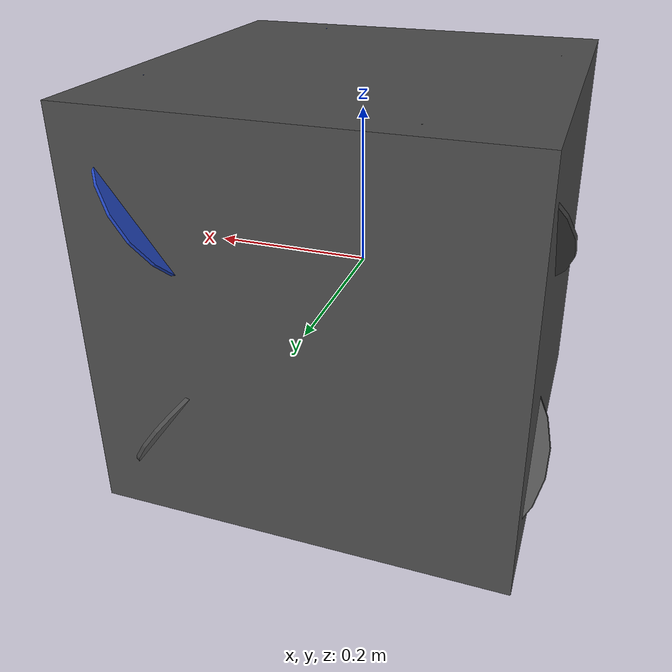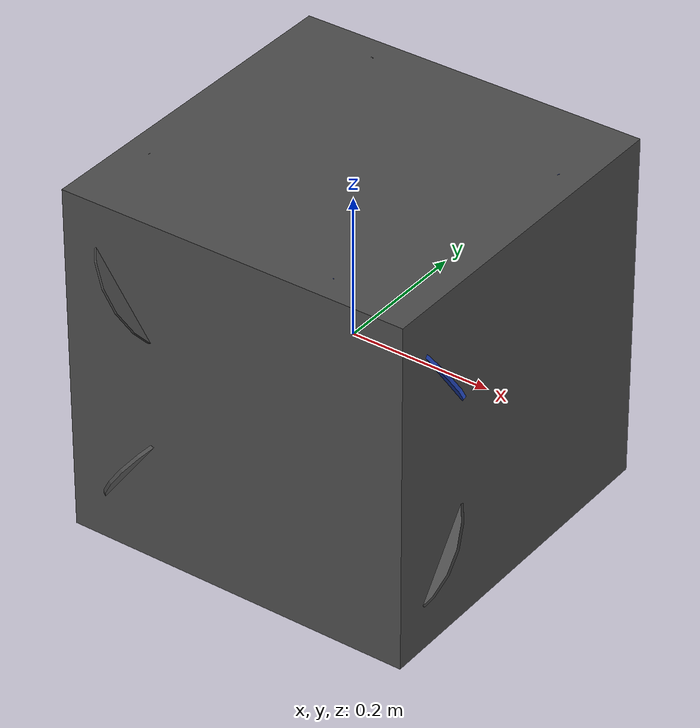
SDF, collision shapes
<sdf version='1.6'>
  <model name='iris'>
    <link name='base_link'>
      <pose frame=''>0 0 0 0 -0 0</pose>
      <inertial>
        <pose frame=''>0 0 0 0 -0 0</pose>
        <mass>1.5</mass>
        <inertia>
          <ixx>0.029125</ixx>
          <ixy>0</ixy>
          <ixz>0</ixz>
          <iyy>0.029125</iyy>
          <iyz>0</iyz>
          <izz>0.055225</izz>
        </inertia>
      </inertial>
      <collision name='base_link_inertia_collision'>
        <pose frame=''>0 0 0 0 -0 0</pose>
        <geometry>
          <box>
            <size>0.50 0.50 0.50</size>
          </box>
        </geometry>
        <surface>
          <contact>
            <ode>
              <min_depth>0.001</min_depth>
              <max_vel>0</max_vel>
            </ode>
          </contact>
          <friction>
            <ode/>
          </friction>
        </surface>
      </collision>
      <visual name='base_link_inertia_visual'>
        <pose frame=''>0 0 0 0 -0 0</pose>
        <geometry>
          <mesh>
            <scale>1 1 1</scale>
            <uri>model://rotors_description/meshes/iris.stl</uri>
          </mesh>
        </geometry>
        <material>
          <script>
            <name>Gazebo/DarkGrey</name>
            <uri>file://media/materials/scripts/gazebo.material</uri>
          </script>
        </material>
      </visual>
      <gravity>1</gravity>
      <velocity_decay/>
    </link>
    <link name='/imu_link'>
      <pose frame=''>0 0 0 0 -0 0</pose>
      <inertial>
        <pose frame=''>0 0 0 0 -0 0</pose>
        <mass>0.015</mass>
        <inertia>
          <ixx>1e-05</ixx>
          <ixy>0</ixy>
          <ixz>0</ixz>
          <iyy>1e-05</iyy>
          <iyz>0</iyz>
          <izz>1e-05</izz>
        </inertia>
      </inertial>
    </link>
    <joint name='/imu_joint' type='revolute'>
      <child>/imu_link</child>
      <parent>base_link</parent>
      <axis>
        <xyz>1 0 0</xyz>
        <limit>
          <lower>0</lower>
          <upper>0</upper>
          <effort>0</effort>
          <velocity>0</velocity>
        </limit>
        <dynamics>
          <spring_reference>0</spring_reference>
          <spring_stiffness>0</spring_stiffness>
        </dynamics>
        <use_parent_model_frame>1</use_parent_model_frame>
      </axis>
    </joint>
    <link name='rotor_0'>
      <pose frame=''>0.14435 0.14435 0.14435 -0.350879 -0.908651  0.172719</pose>
      <inertial>
        <pose frame=''>0 0 0 0 -0 0</pose>
        <mass>0.005</mass>
        <inertia>
          <ixx>9.75e-07</ixx>
          <ixy>0</ixy>
          <ixz>0</ixz>
          <iyy>0.000273104</iyy>
          <iyz>0</iyz>
          <izz>0.000274004</izz>
        </inertia>
      </inertial>
      <collision name='rotor_0_collision'>
        <pose frame=''>0 0 0 0 -0 0</pose>
        <geometry>
          <cylinder>
            <length>0.005</length>
            <radius>0.128</radius>
          </cylinder>
        </geometry>
        <surface>
          <contact>
            <ode/>
          </contact>
          <friction>
            <ode/>
          </friction>
        </surface>
      </collision>
      <visual name='rotor_0_visual'>
        <pose frame=''>0 0 0 0 -0 0</pose>
        <geometry>
          <mesh>
            <scale>1 1 1</scale>
            <uri>model://rotors_description/meshes/iris_prop_ccw.dae</uri>
          </mesh>
        </geometry>
        <material>
          <script>
            <name>Gazebo/Blue</name>
            <uri>file://media/materials/scripts/gazebo.material</uri>
          </script>
        </material>
      </visual>
      <gravity>1</gravity>
      <velocity_decay/>
    </link>
    <joint name='rotor_0_joint' type='revolute'>
      <child>rotor_0</child>
      <parent>base_link</parent>
      <axis>
        <xyz>-0.788675  0.211325   0.57735</xyz>
        <limit>
          <lower>-1e+16</lower>
          <upper>1e+16</upper>
        </limit>
        <dynamics>
          <spring_reference>0</spring_reference>
          <spring_stiffness>0</spring_stiffness>
        </dynamics>
        <use_parent_model_frame>1</use_parent_model_frame>
      </axis>
    </joint>
    <link name='rotor_1'>
      <pose frame=''>-0.14435 0.14435 0.14435 -2.20271 0.21293 -0.415283</pose>
      <inertial>
        <pose frame=''>0 0 0 0 -0 0</pose>
        <mass>0.005</mass>
        <inertia>
          <ixx>9.75e-07</ixx>
          <ixy>0</ixy>
          <ixz>0</ixz>
          <iyy>0.000273104</iyy>
          <iyz>0</iyz>
          <izz>0.000274004</izz>
        </inertia>
      </inertial>
      <collision name='rotor_1_collision'>
        <pose frame=''>0 0 0 0 -0 0</pose>
        <geometry>
          <cylinder>
            <length>0.005</length>
            <radius>0.128</radius>
          </cylinder>
        </geometry>
        <surface>
          <contact>
            <ode/>
          </contact>
          <friction>
            <ode/>
          </friction>
        </surface>
      </collision>
      <visual name='rotor_1_visual'>
        <pose frame=''>0 0 0 0 -0 0</pose>
        <geometry>
          <mesh>
            <scale>1 1 1</scale>
            <uri>model://rotors_description/meshes/iris_prop_ccw.dae</uri>
          </mesh>
        </geometry>
        <material>
          <script>
            <name>Gazebo/DarkGrey</name>
            <uri>file://media/materials/scripts/gazebo.material</uri>
          </script>
        </material>
      </visual>
      <gravity>1</gravity>
      <velocity_decay/>
    </link>
    <joint name='rotor_1_joint' type='revolute'>
      <child>rotor_1</child>
      <parent>base_link</parent>
      <axis>
        <xyz>0.211325 0.788675 -0.57735</xyz>
        <limit>
          <lower>-1e+16</lower>
          <upper>1e+16</upper>
        </limit>
        <dynamics>
          <spring_reference>0</spring_reference>
          <spring_stiffness>0</spring_stiffness>
        </dynamics>
        <use_parent_model_frame>1</use_parent_model_frame>
      </axis>
    </joint>
    <link name='rotor_2'>
      <pose frame=''>0.14435 -0.14435 0.14435 2.20271  -0.21293 -0.415283</pose>
      <inertial>
        <pose frame=''>0 0 0 0 -0 0</pose>
        <mass>0.005</mass>
        <inertia>
          <ixx>9.75e-07</ixx>
          <ixy>0</ixy>
          <ixz>0</ixz>
          <iyy>0.000273104</iyy>
          <iyz>0</iyz>
          <izz>0.000274004</izz>
        </inertia>
      </inertial>
      <collision name='rotor_2_collision'>
        <pose frame=''>0 0 0 0 -0 0</pose>
        <geometry>
          <cylinder>
            <length>0.005</length>
            <radius>0.128</radius>
          </cylinder>
        </geometry>
        <surface>
          <contact>
            <ode/>
          </contact>
          <friction>
            <ode/>
          </friction>
        </surface>
      </collision>
      <visual name='rotor_2_visual'>
        <pose frame=''>0 0 0 0 -0 0</pose>
        <geometry>
          <mesh>
            <scale>1 1 1</scale>
            <uri>model://rotors_description/meshes/iris_prop_cw.dae</uri>
          </mesh>
        </geometry>
        <material>
          <script>
            <name>Gazebo/Blue</name>
            <uri>file://media/materials/scripts/gazebo.material</uri>
          </script>
        </material>
      </visual>
      <gravity>1</gravity>
      <velocity_decay/>
    </link>
    <joint name='rotor_2_joint' type='revolute'>
      <child>rotor_2</child>
      <parent>base_link</parent>
      <axis>
        <xyz>-0.211325 -0.788675  -0.57735</xyz>
        <limit>
          <lower>-1e+16</lower>
          <upper>1e+16</upper>
        </limit>
        <dynamics>
          <spring_reference>0</spring_reference>
          <spring_stiffness>0</spring_stiffness>
        </dynamics>
        <use_parent_model_frame>1</use_parent_model_frame>
      </axis>
    </joint>
    <link name='rotor_3'>
      <pose frame=''>-0.14435 -0.14435 0.14435 0.350879 0.908651 0.172719</pose>
      <inertial>
        <pose frame=''>0 0 0 0 -0 0</pose>
        <mass>0.005</mass>
        <inertia>
          <ixx>9.75e-07</ixx>
          <ixy>0</ixy>
          <ixz>0</ixz>
          <iyy>0.000273104</iyy>
          <iyz>0</iyz>
          <izz>0.000274004</izz>
        </inertia>
      </inertial>
      <collision name='rotor_3_collision'>
        <pose frame=''>0 0 0 0 -0 0</pose>
        <geometry>
          <cylinder>
            <length>0.005</length>
            <radius>0.128</radius>
          </cylinder>
        </geometry>
        <surface>
          <contact>
            <ode/>
          </contact>
          <friction>
            <ode/>
          </friction>
        </surface>
      </collision>
      <visual name='rotor_3_visual'>
        <pose frame=''>0 0 0 0 -0 0</pose>
        <geometry>
          <mesh>
            <scale>1 1 1</scale>
            <uri>model://rotors_description/meshes/iris_prop_cw.dae</uri>
          </mesh>
        </geometry>
        <material>
          <script>
            <name>Gazebo/DarkGrey</name>
            <uri>file://media/materials/scripts/gazebo.material</uri>
          </script>
        </material>
      </visual>
      <gravity>1</gravity>
      <velocity_decay/>
    </link>
    <joint name='rotor_3_joint' type='revolute'>
      <child>rotor_3</child>
      <parent>base_link</parent>
      <axis>
        <xyz>0.788675 -0.211325   0.57735</xyz>
        <limit>
          <lower>-1e+16</lower>
          <upper>1e+16</upper>
        </limit>
        <dynamics>
          <spring_reference>0</spring_reference>
          <spring_stiffness>0</spring_stiffness>
        </dynamics>
        <use_parent_model_frame>1</use_parent_model_frame>
      </axis>
    </joint>
    <link name='rotor_4'>
      <pose frame=''>0.14435 0.14435 -0.14435 0.350879 0.908651 0.172719</pose>
      <inertial>
        <pose frame=''>0 0 0 0 -0 0</pose>
        <mass>0.005</mass>
        <inertia>
          <ixx>9.75e-07</ixx>
          <ixy>0</ixy>
          <ixz>0</ixz>
          <iyy>0.000273104</iyy>
          <iyz>0</iyz>
          <izz>0.000274004</izz>
        </inertia>
      </inertial>
      <collision name='rotor_4_collision'>
        <pose frame=''>0 0 0 0 -0 0</pose>
        <geometry>
          <cylinder>
            <length>0.005</length>
            <radius>0.128</radius>
          </cylinder>
        </geometry>
        <surface>
          <contact>
            <ode/>
          </contact>
          <friction>
            <ode/>
          </friction>
        </surface>
      </collision>
      <visual name='rotor_4_visual'>
        <pose frame=''>0 0 0 0 -0 0</pose>
        <geometry>
          <mesh>
            <scale>1 1 1</scale>
            <uri>model://rotors_description/meshes/iris_prop_cw.dae</uri>
          </mesh>
        </geometry>
        <material>
          <script>
            <name>Gazebo/DarkGrey</name>
            <uri>file://media/materials/scripts/gazebo.material</uri>
          </script>
        </material>
      </visual>
      <gravity>1</gravity>
      <velocity_decay/>
    </link>
    <joint name='rotor_4_joint' type='revolute'>
      <child>rotor_4</child>
      <parent>base_link</parent>
      <axis>
        <xyz>0.788675 -0.211325 0.57735</xyz>
        <limit>
          <lower>-1e+16</lower>
          <upper>1e+16</upper>
        </limit>
        <dynamics>
          <spring_reference>0</spring_reference>
          <spring_stiffness>0</spring_stiffness>
        </dynamics>
        <use_parent_model_frame>1</use_parent_model_frame>
      </axis>
    </joint>
    <link name='rotor_5'>
      <pose frame=''>-0.14435 0.14435 -0.14435 2.20271 -0.21293 -0.415283</pose>
      <inertial>
        <pose frame=''>0 0 0 0 -0 0</pose>
        <mass>0.005</mass>
        <inertia>
          <ixx>9.75e-07</ixx>
          <ixy>0</ixy>
          <ixz>0</ixz>
          <iyy>0.000273104</iyy>
          <iyz>0</iyz>
          <izz>0.000274004</izz>
        </inertia>
      </inertial>
      <collision name='rotor_5_collision'>
        <pose frame=''>0 0 0 0 -0 0</pose>
        <geometry>
          <cylinder>
            <length>0.005</length>
            <radius>0.128</radius>
          </cylinder>
        </geometry>
        <surface>
          <contact>
            <ode/>
          </contact>
          <friction>
            <ode/>
          </friction>
        </surface>
      </collision>
      <visual name='rotor_5_visual'>
        <pose frame=''>0 0 0 0 -0 0</pose>
        <geometry>
          <mesh>
            <scale>1 1 1</scale>
            <uri>model://rotors_description/meshes/iris_prop_cw.dae</uri>
          </mesh>
        </geometry>
        <material>
          <script>
            <name>Gazebo/DarkGrey</name>
            <uri>file://media/materials/scripts/gazebo.material</uri>
          </script>
        </material>
      </visual>
      <gravity>1</gravity>
      <velocity_decay/>
    </link>
    <joint name='rotor_5_joint' type='revolute'>
      <child>rotor_5</child>
      <parent>base_link</parent>
      <axis>
        <xyz>-0.211325 -0.788675  -0.57735</xyz>
        <limit>
          <lower>-1e+16</lower>
          <upper>1e+16</upper>
        </limit>
        <dynamics>
          <spring_reference>0</spring_reference>
          <spring_stiffness>0</spring_stiffness>
        </dynamics>
        <use_parent_model_frame>1</use_parent_model_frame>
      </axis>
    </joint>
    <link name='rotor_6'>
      <pose frame=''>0.14435 -0.14435 -0.14435 -2.20271   0.21293 -0.415283</pose>
      <inertial>
        <pose frame=''>0 0 0 0 -0 0</pose>
        <mass>0.005</mass>
        <inertia>
          <ixx>9.75e-07</ixx>
          <ixy>0</ixy>
          <ixz>0</ixz>
          <iyy>0.000273104</iyy>
          <iyz>0</iyz>
          <izz>0.000274004</izz>
        </inertia>
      </inertial>
      <collision name='rotor_6_collision'>
        <pose frame=''>0 0 0 0 -0 0</pose>
        <geometry>
          <cylinder>
            <length>0.005</length>
            <radius>0.128</radius>
          </cylinder>
        </geometry>
        <surface>
          <contact>
            <ode/>
          </contact>
          <friction>
            <ode/>
          </friction>
        </surface>
      </collision>
      <visual name='rotor_6_visual'>
        <pose frame=''>0 0 0 0 -0 0</pose>
        <geometry>
          <mesh>
            <scale>1 1 1</scale>
            <uri>model://rotors_description/meshes/iris_prop_cw.dae</uri>
          </mesh>
        </geometry>
        <material>
          <script>
            <name>Gazebo/DarkGrey</name>
            <uri>file://media/materials/scripts/gazebo.material</uri>
          </script>
        </material>
      </visual>
      <gravity>1</gravity>
      <velocity_decay/>
    </link>
    <joint name='rotor_6_joint' type='revolute'>
      <child>rotor_6</child>
      <parent>base_link</parent>
      <axis>
        <xyz>0.211325 0.788675 -0.57735</xyz>
        <limit>
          <lower>-1e+16</lower>
          <upper>1e+16</upper>
        </limit>
        <dynamics>
          <spring_reference>0</spring_reference>
          <spring_stiffness>0</spring_stiffness>
        </dynamics>
        <use_parent_model_frame>1</use_parent_model_frame>
      </axis>
    </joint>
    <link name='rotor_7'>
      <pose frame=''>-0.14435 -0.14435 -0.14435 -0.350879 -0.908651  0.172719</pose>
      <inertial>
        <pose frame=''>0 0 0 0 -0 0</pose>
        <mass>0.005</mass>
        <inertia>
          <ixx>9.75e-07</ixx>
          <ixy>0</ixy>
          <ixz>0</ixz>
          <iyy>0.000273104</iyy>
          <iyz>0</iyz>
          <izz>0.000274004</izz>
        </inertia>
      </inertial>
      <collision name='rotor_7_collision'>
        <pose frame=''>0 0 0 0 -0 0</pose>
        <geometry>
          <cylinder>
            <length>0.005</length>
            <radius>0.128</radius>
          </cylinder>
        </geometry>
        <surface>
          <contact>
            <ode/>
          </contact>
          <friction>
            <ode/>
          </friction>
        </surface>
      </collision>
      <visual name='rotor_7_visual'>
        <pose frame=''>0 0 0 0 -0 0</pose>
        <geometry>
          <mesh>
            <scale>1 1 1</scale>
            <uri>model://rotors_description/meshes/iris_prop_cw.dae</uri>
          </mesh>
        </geometry>
        <material>
          <script>
            <name>Gazebo/DarkGrey</name>
            <uri>file://media/materials/scripts/gazebo.material</uri>
          </script>
        </material>
      </visual>
      <gravity>1</gravity>
      <velocity_decay/>
    </link>
    <joint name='rotor_7_joint' type='revolute'>
      <child>rotor_7</child>
      <parent>base_link</parent>
      <axis>
        <xyz>-0.788675  0.211325   0.57735</xyz>
        <limit>
          <lower>-1e+16</lower>
          <upper>1e+16</upper>
        </limit>
        <dynamics>
          <spring_reference>0</spring_reference>
          <spring_stiffness>0</spring_stiffness>
        </dynamics>
        <use_parent_model_frame>1</use_parent_model_frame>
      </axis>
    </joint>
    <plugin name='rosbag' filename='libgazebo_multirotor_base_plugin.so'>
      <robotNamespace/>
      <linkName>base_link</linkName>
      <rotorVelocitySlowdownSim>10</rotorVelocitySlowdownSim>
    </plugin>
    <plugin name='motor_0_model' filename='libgazebo_motor_model.so'>
      <robotNamespace/>
      <jointName>rotor_0_joint</jointName>
      <linkName>rotor_0</linkName>
      <turningDirection>ccw</turningDirection>
      <timeConstantUp>0.0125</timeConstantUp>
      <timeConstantDown>0.025</timeConstantDown>
      <maxRotVelocity>1100</maxRotVelocity>
      <motorConstant>8.54858e-06</motorConstant>
      <momentConstant>0.06</momentConstant>
      <commandSubTopic>/gazebo/command/motor_speed</commandSubTopic>
      <motorNumber>0</motorNumber>
      <rotorDragCoefficient>0.000175</rotorDragCoefficient>
      <rollingMomentCoefficient>1e-06</rollingMomentCoefficient>
      <motorSpeedPubTopic>/motor_speed/0</motorSpeedPubTopic>
      <rotorVelocitySlowdownSim>10</rotorVelocitySlowdownSim>
    </plugin>
    <plugin name='motor_1_model' filename='libgazebo_motor_model.so'>
      <robotNamespace/>
      <jointName>rotor_1_joint</jointName>
      <linkName>rotor_1</linkName>
      <turningDirection>ccw</turningDirection>
      <timeConstantUp>0.0125</timeConstantUp>
      <timeConstantDown>0.025</timeConstantDown>
      <maxRotVelocity>1100</maxRotVelocity>
      <motorConstant>8.54858e-06</motorConstant>
      <momentConstant>0.06</momentConstant>
      <commandSubTopic>/gazebo/command/motor_speed</commandSubTopic>
      <motorNumber>1</motorNumber>
      <rotorDragCoefficient>0.000175</rotorDragCoefficient>
      <rollingMomentCoefficient>1e-06</rollingMomentCoefficient>
      <motorSpeedPubTopic>/motor_speed/1</motorSpeedPubTopic>
      <rotorVelocitySlowdownSim>10</rotorVelocitySlowdownSim>
    </plugin>
    <plugin name='motor_2_model' filename='libgazebo_motor_model.so'>
      <robotNamespace/>
      <jointName>rotor_2_joint</jointName>
      <linkName>rotor_2</linkName>
      <turningDirection>cw</turningDirection>
      <timeConstantUp>0.0125</timeConstantUp>
      <timeConstantDown>0.025</timeConstantDown>
      <maxRotVelocity>1100</maxRotVelocity>
      <motorConstant>8.54858e-06</motorConstant>
      <momentConstant>0.06</momentConstant>
      <commandSubTopic>/gazebo/command/motor_speed</commandSubTopic>
      <motorNumber>2</motorNumber>
      <rotorDragCoefficient>0.000175</rotorDragCoefficient>
      <rollingMomentCoefficient>1e-06</rollingMomentCoefficient>
      <motorSpeedPubTopic>/motor_speed/2</motorSpeedPubTopic>
      <rotorVelocitySlowdownSim>10</rotorVelocitySlowdownSim>
    </plugin>
    <plugin name='motor_3_model' filename='libgazebo_motor_model.so'>
      <robotNamespace/>
      <jointName>rotor_3_joint</jointName>
      <linkName>rotor_3</linkName>
      <turningDirection>cw</turningDirection>
      <timeConstantUp>0.0125</timeConstantUp>
      <timeConstantDown>0.025</timeConstantDown>
      <maxRotVelocity>1100</maxRotVelocity>
      <motorConstant>8.54858e-06</motorConstant>
      <momentConstant>0.06</momentConstant>
      <commandSubTopic>/gazebo/command/motor_speed</commandSubTopic>
      <motorNumber>3</motorNumber>
      <rotorDragCoefficient>0.000175</rotorDragCoefficient>
      <rollingMomentCoefficient>1e-06</rollingMomentCoefficient>
      <motorSpeedPubTopic>/motor_speed/3</motorSpeedPubTopic>
      <rotorVelocitySlowdownSim>10</rotorVelocitySlowdownSim>
    </plugin>
    <plugin name='motor_4_model' filename='libgazebo_motor_model.so'>
      <robotNamespace/>
      <jointName>rotor_4_joint</jointName>
      <linkName>rotor_4</linkName>
      <turningDirection>cw</turningDirection>
      <timeConstantUp>0.0125</timeConstantUp>
      <timeConstantDown>0.025</timeConstantDown>
      <maxRotVelocity>1100</maxRotVelocity>
      <motorConstant>8.54858e-06</motorConstant>
      <momentConstant>0.06</momentConstant>
      <commandSubTopic>/gazebo/command/motor_speed</commandSubTopic>
      <motorNumber>3</motorNumber>
      <rotorDragCoefficient>0.000175</rotorDragCoefficient>
      <rollingMomentCoefficient>1e-06</rollingMomentCoefficient>
      <motorSpeedPubTopic>/motor_speed/3</motorSpeedPubTopic>
      <rotorVelocitySlowdownSim>10</rotorVelocitySlowdownSim>
    </plugin>
    <plugin name='motor_5_model' filename='libgazebo_motor_model.so'>
      <robotNamespace/>
      <jointName>rotor_5_joint</jointName>
      <linkName>rotor_5</linkName>
      <turningDirection>cw</turningDirection>
      <timeConstantUp>0.0125</timeConstantUp>
      <timeConstantDown>0.025</timeConstantDown>
      <maxRotVelocity>1100</maxRotVelocity>
      <motorConstant>8.54858e-06</motorConstant>
      <momentConstant>0.06</momentConstant>
      <commandSubTopic>/gazebo/command/motor_speed</commandSubTopic>
      <motorNumber>3</motorNumber>
      <rotorDragCoefficient>0.000175</rotorDragCoefficient>
      <rollingMomentCoefficient>1e-06</rollingMomentCoefficient>
      <motorSpeedPubTopic>/motor_speed/3</motorSpeedPubTopic>
      <rotorVelocitySlowdownSim>10</rotorVelocitySlowdownSim>
    </plugin>
    <plugin name='motor_6_model' filename='libgazebo_motor_model.so'>
      <robotNamespace/>
      <jointName>rotor_6_joint</jointName>
      <linkName>rotor_6</linkName>
      <turningDirection>cw</turningDirection>
      <timeConstantUp>0.0125</timeConstantUp>
      <timeConstantDown>0.025</timeConstantDown>
      <maxRotVelocity>1100</maxRotVelocity>
      <motorConstant>8.54858e-06</motorConstant>
      <momentConstant>0.06</momentConstant>
      <commandSubTopic>/gazebo/command/motor_speed</commandSubTopic>
      <motorNumber>3</motorNumber>
      <rotorDragCoefficient>0.000175</rotorDragCoefficient>
      <rollingMomentCoefficient>1e-06</rollingMomentCoefficient>
      <motorSpeedPubTopic>/motor_speed/3</motorSpeedPubTopic>
      <rotorVelocitySlowdownSim>10</rotorVelocitySlowdownSim>
    </plugin>
    <plugin name='motor_7_model' filename='libgazebo_motor_model.so'>
      <robotNamespace/>
      <jointName>rotor_7_joint</jointName>
      <linkName>rotor_7</linkName>
      <turningDirection>cw</turningDirection>
      <timeConstantUp>0.0125</timeConstantUp>
      <timeConstantDown>0.025</timeConstantDown>
      <maxRotVelocity>1100</maxRotVelocity>
      <motorConstant>8.54858e-06</motorConstant>
      <momentConstant>0.06</momentConstant>
      <commandSubTopic>/gazebo/command/motor_speed</commandSubTopic>
      <motorNumber>3</motorNumber>
      <rotorDragCoefficient>0.000175</rotorDragCoefficient>
      <rollingMomentCoefficient>1e-06</rollingMomentCoefficient>
      <motorSpeedPubTopic>/motor_speed/3</motorSpeedPubTopic>
      <rotorVelocitySlowdownSim>10</rotorVelocitySlowdownSim>
    </plugin>
    <plugin name='gps_plugin' filename='libgazebo_gps_plugin.so'>
      <robotNamespace/>
      <gpsNoise>1</gpsNoise>
    </plugin>
    <plugin name='magnetometer_plugin' filename='libgazebo_magnetometer_plugin.so'>
      <robotNamespace/>
      <pubRate>100</pubRate>
      <noiseDensity>0.0004</noiseDensity>
      <randomWalk>6.4e-06</randomWalk>
      <biasCorrelationTime>600</biasCorrelationTime>
      <magTopic>/mag</magTopic>
    </plugin>
    <plugin name='barometer_plugin' filename='libgazebo_barometer_plugin.so'>
      <robotNamespace/>
      <pubRate>50</pubRate>
      <baroTopic>/baro</baroTopic>
    </plugin>
    <plugin name='mavlink_interface' filename='libgazebo_mavlink_interface.so'>
      <robotNamespace/>
      <imuSubTopic>/imu</imuSubTopic>
      <gpsSubTopic>/gps</gpsSubTopic>
      <magSubTopic>/mag</magSubTopic>
      <baroSubTopic>/baro</baroSubTopic>
      <mavlink_addr>INADDR_ANY</mavlink_addr>
      <mavlink_udp_port>14560</mavlink_udp_port>
      <mavlink_tcp_port>4560</mavlink_tcp_port>
      <serialEnabled>0</serialEnabled>
      <serialDevice>/dev/ttyACM0</serialDevice>
      <baudRate>921600</baudRate>
      <qgc_addr>INADDR_ANY</qgc_addr>
      <qgc_udp_port>14550</qgc_udp_port>
      <sdk_addr>INADDR_ANY</sdk_addr>
      <sdk_udp_port>14540</sdk_udp_port>
      <hil_mode>0</hil_mode>
      <hil_state_level>0</hil_state_level>
      <vehicle_is_tailsitter>0</vehicle_is_tailsitter>
      <send_vision_estimation>1</send_vision_estimation>
      <send_odometry>0</send_odometry>
      <enable_lockstep>1</enable_lockstep>
      <use_tcp>1</use_tcp>
      <motorSpeedCommandPubTopic>/gazebo/command/motor_speed</motorSpeedCommandPubTopic>
      <control_channels>
        <channel name='rotor1'>
          <input_index>0</input_index>
          <input_offset>0</input_offset>
          <input_scaling>1000</input_scaling>
          <zero_position_disarmed>0</zero_position_disarmed>
          <zero_position_armed>100</zero_position_armed>
          <joint_control_type>velocity</joint_control_type>
        </channel>
        <channel name='rotor2'>
          <input_index>1</input_index>
          <input_offset>0</input_offset>
          <input_scaling>1000</input_scaling>
          <zero_position_disarmed>0</zero_position_disarmed>
          <zero_position_armed>100</zero_position_armed>
          <joint_control_type>velocity</joint_control_type>
        </channel>
        <channel name='rotor3'>
          <input_index>2</input_index>
          <input_offset>0</input_offset>
          <input_scaling>1000</input_scaling>
          <zero_position_disarmed>0</zero_position_disarmed>
          <zero_position_armed>100</zero_position_armed>
          <joint_control_type>velocity</joint_control_type>
        </channel>
        <channel name='rotor4'>
          <input_index>3</input_index>
          <input_offset>0</input_offset>
          <input_scaling>1000</input_scaling>
          <zero_position_disarmed>0</zero_position_disarmed>
          <zero_position_armed>100</zero_position_armed>
          <joint_control_type>velocity</joint_control_type>
        </channel>
        <channel name='rotor5'>
          <input_index>4</input_index>
          <input_offset>0</input_offset>
          <input_scaling>1000</input_scaling>
          <zero_position_disarmed>0</zero_position_disarmed>
          <zero_position_armed>100</zero_position_armed>
          <joint_control_type>velocity</joint_control_type>
        </channel>
        <channel name='rotor6'>
          <input_index>5</input_index>
          <input_offset>0</input_offset>
          <input_scaling>1000</input_scaling>
          <zero_position_disarmed>0</zero_position_disarmed>
          <zero_position_armed>100</zero_position_armed>
          <joint_control_type>velocity</joint_control_type>
        </channel>
        <channel name='rotor7'>
          <input_index>6</input_index>
          <input_offset>0</input_offset>
          <input_scaling>1000</input_scaling>
          <zero_position_disarmed>0</zero_position_disarmed>
          <zero_position_armed>100</zero_position_armed>
          <joint_control_type>velocity</joint_control_type>
        </channel>
        <channel name='rotor8'>
          <input_index>7</input_index>
          <input_offset>0</input_offset>
          <input_scaling>1000</input_scaling>
          <zero_position_disarmed>0</zero_position_disarmed>
          <zero_position_armed>100</zero_position_armed>
          <joint_control_type>velocity</joint_control_type>
        </channel>
      </control_channels>
    </plugin>
    <static>0</static>
    <plugin name='rotors_gazebo_imu_plugin' filename='libgazebo_imu_plugin.so'>
      <robotNamespace/>
      <linkName>/imu_link</linkName>
      <imuTopic>/imu</imuTopic>
      <gyroscopeNoiseDensity>0.00018665</gyroscopeNoiseDensity>
      <gyroscopeRandomWalk>3.8785e-05</gyroscopeRandomWalk>
      <gyroscopeBiasCorrelationTime>1000.0</gyroscopeBiasCorrelationTime>
      <gyroscopeTurnOnBiasSigma>0.0087</gyroscopeTurnOnBiasSigma>
      <accelerometerNoiseDensity>0.00186</accelerometerNoiseDensity>
      <accelerometerRandomWalk>0.006</accelerometerRandomWalk>
      <accelerometerBiasCorrelationTime>300.0</accelerometerBiasCorrelationTime>
      <accelerometerTurnOnBiasSigma>0.196</accelerometerTurnOnBiasSigma>
    </plugin>
  </model>
</sdf>
